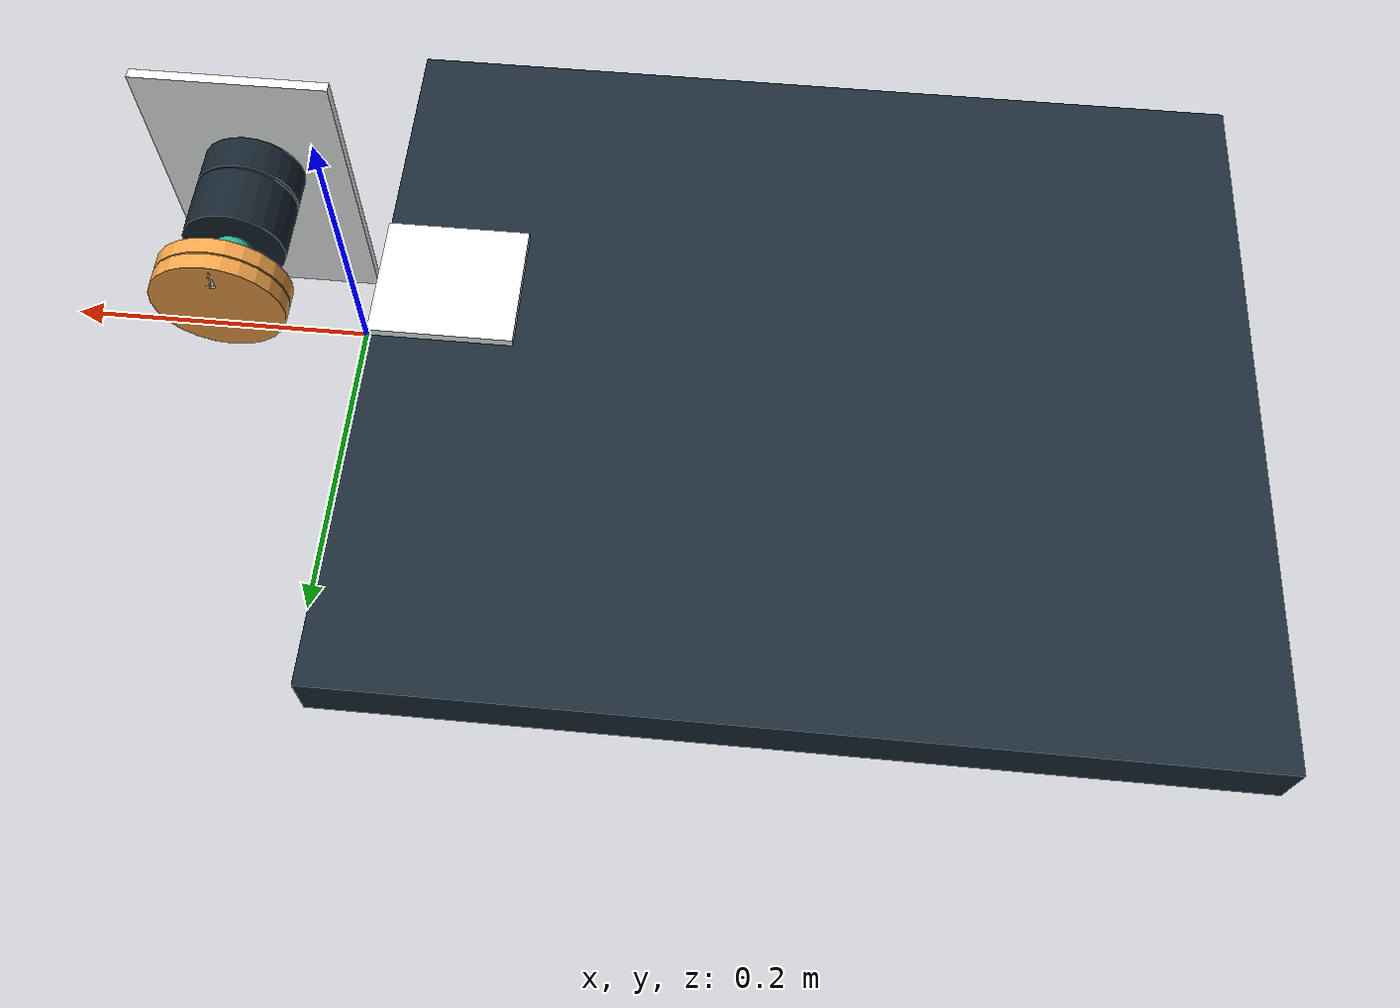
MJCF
<mujoco model="overboard_bench_rig">

  <compiler angle="degree" autolimits="true"/>
  <option timestep="0.0005" integrator="implicitfast"/>

  <default>
    <geom contype="0" conaffinity="0"/>
  </default>

  <asset>
    <texture name="grid" type="2d" builtin="checker" rgb1="0.086 0.137 0.180"
             rgb2="0.129 0.196 0.247" width="300" height="300"/>
    <material name="grid_mat" texture="grid" texrepeat="6 6" reflectance="0.05"/>
    <material name="ink"   rgba="0.086 0.137 0.180 1"/>
    <material name="cloud" rgba="0.957 0.973 0.969 1"/>
    <material name="amber" rgba="0.949 0.635 0.290 1"/>
    <material name="mint"  rgba="0.165 0.682 0.592 1"/>
  </asset>

  <worldbody>
    <light name="key"  pos="0.6 -0.7 0.9" dir="-0.5 0.6 -0.8" directional="true"
           diffuse="0.75 0.74 0.72" specular="0.25 0.25 0.25" castshadow="true"/>
    <light name="fill" pos="-0.5 0.6 0.5" dir="0.4 -0.5 -0.5" directional="true"
           diffuse="0.22 0.24 0.26" specular="0 0 0" castshadow="false"/>

    <!-- Desk. Static, visual only. Top at z=0, edge at x=0. -->
    <geom name="desk" type="box" size="0.30 0.25 0.02" pos="-0.30 0 -0.02"
          material="grid_mat"/>

    <geom name="base_plate" type="box" size="0.050 0.045 0.003175" pos="-0.050 -0.045 0.003175"
          material="cloud"/>

    <geom name="riser" type="box" size="0.060 0.003175 0.100" pos="0.060 -0.045 0.100"
          material="cloud"/>

    <!-- Motor stator, static half. Bolted to the plate face, axis along Y. -->
    <geom name="stator" type="cylinder" size="0.0315 0.0125" euler="90 0 0"
          pos="0.060 -0.0325 0.120" material="ink"/>

    <body name="rotor" pos="0.060 0 0.120">
      <joint name="shaft" type="hinge" axis="0 1 0" damping="1e-4"
             frictionloss="5e-3"/>

      <geom name="rotor_can" type="cylinder" size="0.0315 0.018" euler="90 0 0"
            pos="0 0 0" density="4300" material="ink"/>

      <!-- Set-screw hub. Small, but it is real mass on the shaft. -->
      <geom name="hub" type="cylinder" size="0.011 0.010" euler="90 0 0"
            pos="0 0.028 0" density="2700" material="mint"/>

      <body name="flywheel_a" pos="0 0.046 0">
        <inertial pos="0 0 0" euler="90 0 0" mass="0.152"
                  diaginertia="8.255e-5 8.255e-5 1.651e-4"/>
        <geom name="flywheel_a_disc" type="cylinder" size="0.041 0.005"
              euler="90 0 0" material="amber"/>
      </body>

      <!-- Flywheel B: identical part, the second unit of the ×2 hedge. Both
           are modelled because both are on the shaft -- #65 decides whether
           to keep both, not this file. -->
      <body name="flywheel_b" pos="0 0.057 0">
        <inertial pos="0 0 0" euler="90 0 0" mass="0.152"
                  diaginertia="8.255e-5 8.255e-5 1.651e-4"/>
        <geom name="flywheel_b_disc" type="cylinder" size="0.041 0.005"
              euler="90 0 0" material="amber"/>

        <geom name="index" type="box" size="0.004 0.005 0.010" pos="0 0 0.030"
              mass="0" material="cloud"/>
      </body>
    </body>
  </worldbody>

  <actuator>
    <motor name="shaft_motor" joint="shaft" gear="1" ctrlrange="-2.0 2.0"
           ctrllimited="true"/>
  </actuator>

  <sensor>
    <jointpos name="shaft_angle" joint="shaft"/>
    <jointvel name="shaft_rate"  joint="shaft"/>
    <actuatorfrc name="shaft_torque" actuator="shaft_motor"/>
  </sensor>
</mujoco>
